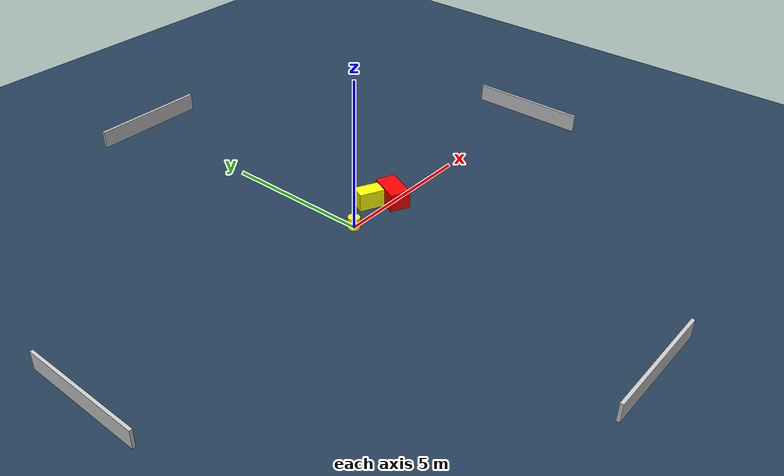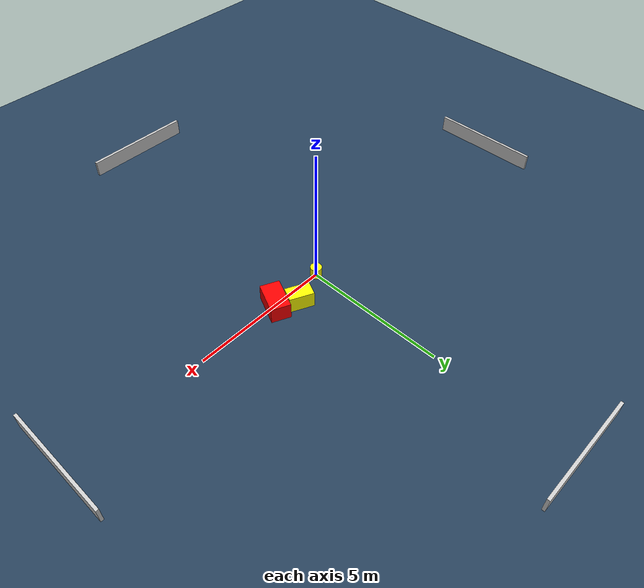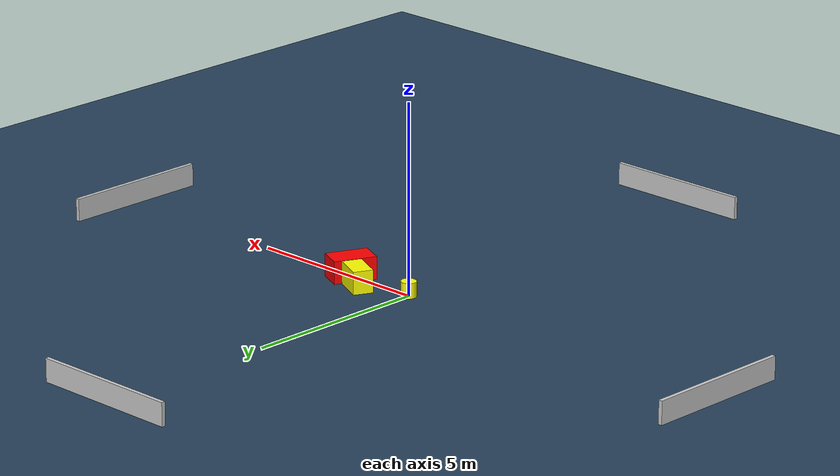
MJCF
<?xml version="1.0" ?>
<mujoco model="generated_environment">
  <option timestep="0.01" integrator="RK4" cone="elliptic"/>
  <default>
    <geom density="1"/>
  </default>
  <asset>
    <texture builtin="gradient" height="3072" name="skybox" rgb1="0.3 0.5 0.7" rgb2="0 0 0" type="skybox" width="512"/>
    <texture builtin="checker" height="300" name="groundplane" rgb1="0.2 0.3 0.4" rgb2="0.1 0.2 0.3" type="2d" width="300"/>
    <material name="groundplane" reflectance="0.2" texrepeat="5 5" texture="groundplane"/>
  </asset>
  <worldbody>
    <light dir="0 0 -1" directional="true" pos="0 0 1.5"/>
    <geom condim="3" friction="0.5 0.005 0.001" material="groundplane" name="floor" pos="0 0 0" size="0 0 0.05" type="plane"/>
    <body name="walls">
      <geom name="wall_1" condim="4" pos="-10.0 0.0 0.3" rgba="0.800000011920929 0.800000011920929 0.800000011920929 1.0" size="0.05 2.0 0.3" type="box"/>
      <geom name="wall_2" condim="4" pos="10.0 0.0 0.3" rgba="0.800000011920929 0.800000011920929 0.800000011920929 1.0" size="0.05 2.0 0.3" type="box"/>
      <geom name="wall_3" condim="4" pos="0.0 -10.0 0.3" rgba="0.800000011920929 0.800000011920929 0.800000011920929 1.0" size="2.0 0.05 0.3" type="box"/>
      <geom name="wall_4" condim="4" pos="0.0 10.0 0.3" rgba="0.800000011920929 0.800000011920929 0.800000011920929 1.0" size="2.0 0.05 0.3" type="box"/>
    </body>
    <body name="robot">
      <joint name="joint_x" type="slide" pos="0 0 0" axis="1 0 0"/>
      <joint name="joint_y" type="slide" pos="0 0 0" axis="0 1 0"/>
      <geom name="robot" type="cylinder" pos="0.0 0.0 0.2" size="0.2 0.2 0.0" mass="5.0" friction="1.0 0.005 0.0001" condim="4" rgba="1.0 1.0 0.0 1.0"/>
    </body>
    <body name="obstacle_1_movable">
      <geom name="obstacle_1_movable" condim="4" pos="1.2968555967654936 0.4879027866590906 0.3" euler="0 0 244.59141558752816" friction="0.0 0.005 0.001" rgba="1.0 1.0 0.0 1.0" size="0.260067505755859 0.42567016423751824 0.3" type="box" mass="0.1"/>
      <joint type="free"/>
    </body>
    <body name="obstacle_2_static">
      <geom name="obstacle_2_static" condim="4" pos="1.9678154428529309 0.05380275574360128 0.3" euler="0 0 65.35577842315007" friction="0.0 0.005 0.001" rgba="1.0 0.0 0.0 1.0" size="0.561059887039511 0.3392556103632154 0.3" type="box"/>
    </body>
  </worldbody>
  <actuator>
    <motor name="actuator_x" joint="joint_x" gear="1" ctrlrange="-1 1"/>
    <motor name="actuator_y" joint="joint_y" gear="1" ctrlrange="-1 1"/>
  </actuator>
</mujoco>
